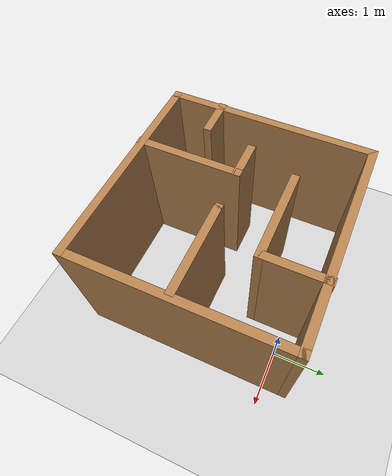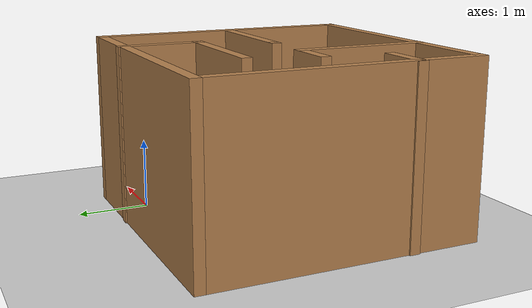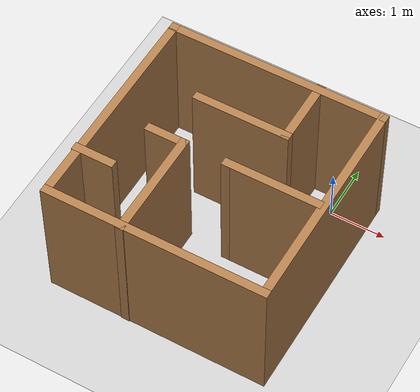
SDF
<sdf version="1.7">
 <world name="default">
  <light name="sun" type="directional">
   <pose>0 0 10 0 -0 0</pose>
   <diffuse>0.8 0.8 0.8 1</diffuse>
   <specular>0.2 0.2 0.2 1</specular>
   <attenuation>
    <range>1000</range>
    <constant>0.9</constant>
    <linear>0.01</linear>
    <quadratic>0.001</quadratic>
   </attenuation>
   <direction>-0.5 0.1 -0.9</direction>
   <spot><inner_angle>0</inner_angle><outer_angle>0</outer_angle><falloff>0</falloff></spot>
  </light>
  <model name="ground_plane">
   <static>1</static>
   <link name="link">
    <collision name="collision">
     <geometry><plane><normal>0 0 1</normal><size>100 100</size></plane></geometry>
     <surface>
      <contact><collide_bitmask>65535</collide_bitmask></contact>
      <friction><ode><mu>100</mu><mu2>50</mu2></ode></friction>
     </surface>
    </collision>
    <visual name="visual">
     <cast_shadows>0</cast_shadows>
     <geometry><plane><normal>0 0 1</normal><size>100 100</size></plane></geometry>
     <material>
      <script><uri>file://media/materials/scripts/gazebo.material</uri><name>Gazebo/Grey</name></script>
     </material>
    </visual>
   </link>
  </model>
  <gravity>0 0 -9.8</gravity>
  <magnetic_field>6e-06 2.3e-05 -4.2e-05</magnetic_field>
  <atmosphere type="adiabatic"/>
  <physics type="ode">
   <max_step_size>0.001</max_step_size>
   <real_time_factor>1</real_time_factor>
   <real_time_update_rate>1000</real_time_update_rate>
  </physics>
  <scene><ambient>0.4 0.4 0.4 1</ambient><background>0.7 0.7 0.7 1</background><shadows>1</shadows></scene>
  <audio><device>default</device></audio>
  <spherical_coordinates>
   <surface_model>EARTH_WGS84</surface_model>
   <latitude_deg>0</latitude_deg>
   <longitude_deg>0</longitude_deg>
   <elevation>0</elevation>
   <heading_deg>0</heading_deg>
  </spherical_coordinates>
  <model name="Challenge_Sim">
   <pose>0.532712 -1.52204 0 0 -0 0</pose>
   <link name="Wall_23">
    <collision name="Wall_23_Collision">
     <geometry><box><size>4 0.15 2.5</size></box></geometry>
     <pose>0 0 1.25 0 -0 0</pose>
    </collision>
    <visual name="Wall_23_Visual">
     <pose>0 0 1.25 0 -0 0</pose>
     <geometry><box><size>4 0.15 2.5</size></box></geometry>
     <material>
      <script><uri>file://media/materials/scripts/gazebo.material</uri><name>Gazebo/Wood</name></script>
      <ambient>1 1 1 1</ambient>
     </material>
     <meta><layer>0</layer></meta>
    </visual>
    <pose>-3.78037 -0.004176 0 0 -0 -1.5708</pose>
   </link>
   <link name="Wall_24">
    <collision name="Wall_24_Collision">
     <geometry><box><size>4 0.15 2.5</size></box></geometry>
     <pose>0 0 1.25 0 -0 0</pose>
    </collision>
    <visual name="Wall_24_Visual">
     <pose>0 0 1.25 0 -0 0</pose>
     <geometry><box><size>4 0.15 2.5</size></box></geometry>
     <material>
      <script><uri>file://media/materials/scripts/gazebo.material</uri><name>Gazebo/Wood</name></script>
      <ambient>1 1 1 1</ambient>
     </material>
     <meta><layer>0</layer></meta>
    </visual>
    <pose>-1.85537 -1.92918 0 0 -0 0</pose>
   </link>
   <link name="Wall_25">
    <collision name="Wall_25_Collision">
     <geometry><box><size>4 0.15 2.5</size></box></geometry>
     <pose>0 0 1.25 0 -0 0</pose>
    </collision>
    <visual name="Wall_25_Visual">
     <pose>0 0 1.25 0 -0 0</pose>
     <geometry><box><size>4 0.15 2.5</size></box></geometry>
     <material>
      <script><uri>file://media/materials/scripts/gazebo.material</uri><name>Gazebo/Wood</name></script>
      <ambient>1 1 1 1</ambient>
     </material>
     <meta><layer>0</layer></meta>
    </visual>
    <pose>0.069634 -0.004176 0 0 -0 1.5708</pose>
   </link>
   <link name="Wall_26">
    <collision name="Wall_26_Collision">
     <geometry><box><size>4 0.15 2.5</size></box></geometry>
     <pose>0 0 1.25 0 -0 0</pose>
    </collision>
    <visual name="Wall_26_Visual">
     <pose>0 0 1.25 0 -0 0</pose>
     <geometry><box><size>4 0.15 2.5</size></box></geometry>
     <material>
      <script><uri>file://media/materials/scripts/gazebo.material</uri><name>Gazebo/Wood</name></script>
      <ambient>1 1 1 1</ambient>
     </material>
     <meta><layer>0</layer></meta>
    </visual>
    <pose>-1.85537 1.92082 0 0 -0 3.14159</pose>
   </link>
   <link name="Wall_28">
    <collision name="Wall_28_Collision">
     <geometry><box><size>1.25 0.15 2.5</size></box></geometry>
     <pose>0 0 1.25 0 -0 0</pose>
    </collision>
    <visual name="Wall_28_Visual">
     <pose>0 0 1.25 0 -0 0</pose>
     <geometry><box><size>1.25 0.15 2.5</size></box></geometry>
     <material>
      <script><uri>file://media/materials/scripts/gazebo.material</uri><name>Gazebo/Wood</name></script>
      <ambient>1 1 1 1</ambient>
     </material>
     <meta><layer>0</layer></meta>
    </visual>
    <pose>-1.08907 1.39074 0 0 -0 -1.5708</pose>
   </link>
   <link name="Wall_29">
    <collision name="Wall_29_Collision">
     <geometry><box><size>1.75 0.15 2.5</size></box></geometry>
     <pose>0 0 1.25 0 -0 0</pose>
    </collision>
    <visual name="Wall_29_Visual">
     <pose>0 0 1.25 0 -0 0</pose>
     <geometry><box><size>1.75 0.15 2.5</size></box></geometry>
     <material>
      <script><uri>file://media/materials/scripts/gazebo.material</uri><name>Gazebo/Wood</name></script>
      <ambient>1 1 1 1</ambient>
     </material>
     <meta><layer>0</layer></meta>
    </visual>
    <pose>-1.88907 0.840735 0 0 -0 3.14159</pose>
   </link>
   <link name="Wall_31">
    <collision name="Wall_31_Collision">
     <geometry><box><size>1.75 0.15 2.5</size></box></geometry>
     <pose>0 0 1.25 0 -0 0</pose>
    </collision>
    <visual name="Wall_31_Visual">
     <pose>0 0 1.25 0 -0 0</pose>
     <geometry><box><size>1.75 0.15 2.5</size></box></geometry>
     <material>
      <script><uri>file://media/materials/scripts/gazebo.material</uri><name>Gazebo/Wood</name></script>
      <ambient>1 1 1 1</ambient>
     </material>
     <meta><layer>0</layer></meta>
    </visual>
    <pose>-0.823052 -0.090735 0 0 -0 3.14159</pose>
   </link>
   <link name="Wall_32">
    <collision name="Wall_32_Collision">
     <geometry><box><size>0.16 0.15 2.5</size></box></geometry>
     <pose>0 0 1.25 0 -0 0</pose>
    </collision>
    <visual name="Wall_32_Visual">
     <pose>0 0 1.25 0 -0 0</pose>
     <geometry><box><size>0.16 0.15 2.5</size></box></geometry>
     <material>
      <script><uri>file://media/materials/scripts/gazebo.material</uri><name>Gazebo/Wood</name></script>
      <ambient>1 1 1 1</ambient>
     </material>
     <meta><layer>0</layer></meta>
    </visual>
    <pose>-1.61805 -0.090735 0 0 -0 0</pose>
   </link>
   <link name="Wall_34">
    <collision name="Wall_34_Collision">
     <geometry><box><size>0.75 0.15 2.5</size></box></geometry>
     <pose>0 0 1.25 0 -0 0</pose>
    </collision>
    <visual name="Wall_34_Visual">
     <pose>0 0 1.25 0 -0 0</pose>
     <geometry><box><size>0.75 0.15 2.5</size></box></geometry>
     <material>
      <script><uri>file://media/materials/scripts/gazebo.material</uri><name>Gazebo/Wood</name></script>
      <ambient>1 1 1 1</ambient>
     </material>
     <meta><layer>0</layer></meta>
    </visual>
    <pose>-3.5044 -0.995846 0 0 -0 0</pose>
   </link>
   <link name="Wall_37">
    <collision name="Wall_37_Collision">
     <geometry><box><size>0.75 0.15 2.5</size></box></geometry>
     <pose>0 0 1.25 0 -0 0</pose>
    </collision>
    <visual name="Wall_37_Visual">
     <pose>0 0 1.25 0 -0 0</pose>
     <geometry><box><size>0.75 0.15 2.5</size></box></geometry>
     <material>
      <script><uri>file://media/materials/scripts/gazebo.material</uri><name>Gazebo/Wood</name></script>
      <ambient>1 1 1 1</ambient>
     </material>
     <meta><layer>0</layer></meta>
    </visual>
    <pose>-2.71997 -0.090735 0 0 -0 0</pose>
   </link>
   <link name="Wall_38">
    <collision name="Wall_38_Collision">
     <geometry><box><size>2 0.15 2.5</size></box></geometry>
     <pose>0 0 1.25 0 -0 0</pose>
    </collision>
    <visual name="Wall_38_Visual">
     <pose>0 0 1.25 0 -0 0</pose>
     <geometry><box><size>2 0.15 2.5</size></box></geometry>
     <material>
      <script><uri>file://media/materials/scripts/gazebo.material</uri><name>Gazebo/Wood</name></script>
      <ambient>1 1 1 1</ambient>
     </material>
     <meta><layer>0</layer></meta>
    </visual>
    <pose>-2.41997 -1.01574 0 0 -0 -1.5708</pose>
   </link>
   <static>1</static>
  </model>
 </world>
</sdf>
